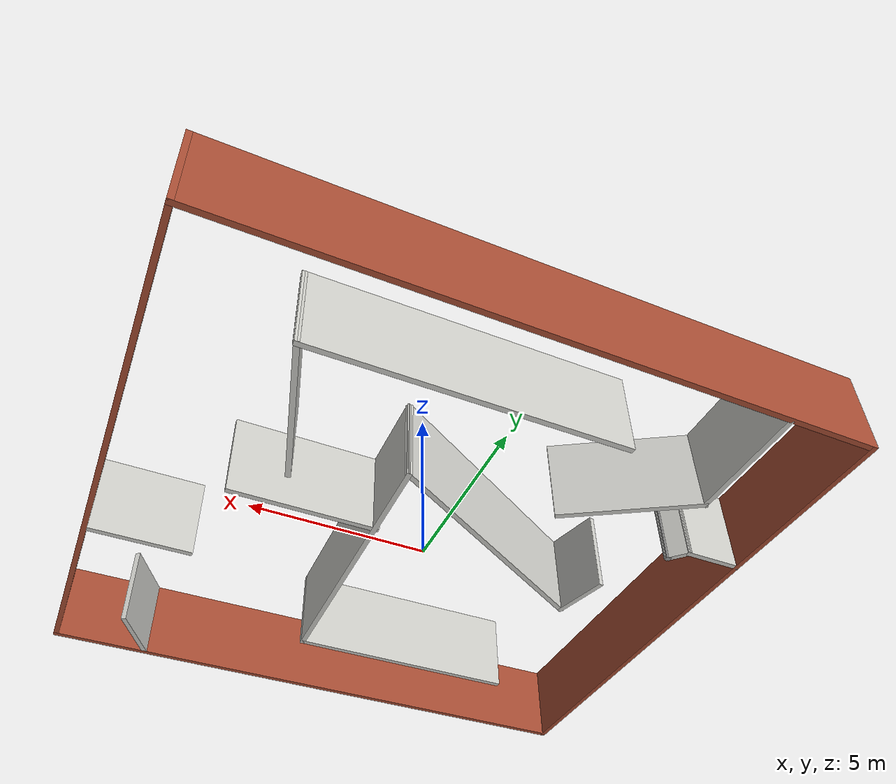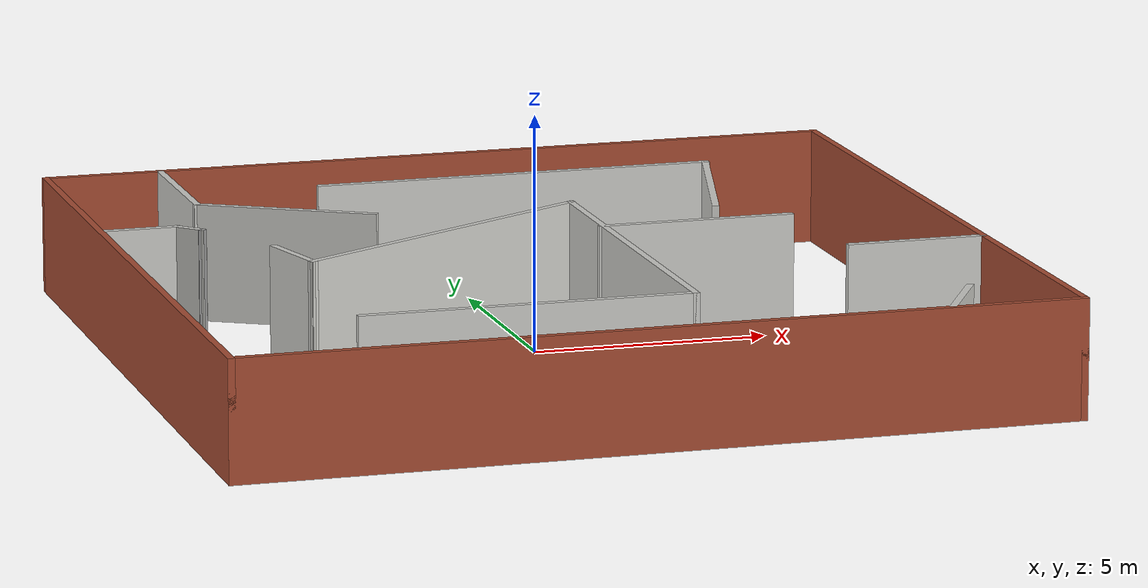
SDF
<?xml version='1.0'?>
<sdf version='1.7'>
  <model name='maze'>
    <pose>0.170889 -0.139064 0 0 -0 0</pose>
    <link name='Wall_22'>
      <collision name='Wall_22_Collision'>
        <geometry>
          <box>
            <size>16.75 0.15 2.5</size>
          </box>
        </geometry>
        <pose>0 0 1.25 0 -0 0</pose>
      </collision>
      <visual name='Wall_22_Visual'>
        <pose>0 0 1.25 0 -0 0</pose>
        <geometry>
          <box>
            <size>16.75 0.15 2.5</size>
          </box>
        </geometry>
        <material>
          <script>
            <uri>file://media/materials/scripts/gazebo.material</uri>
            <name>Gazebo/Bricks</name>
          </script>
          <ambient>1 1 1 1</ambient>
        </material>
        <meta>
          <layer>0</layer>
        </meta>
      </visual>
      <pose>-8.675 0 0 0 -0 -1.5708</pose>
    </link>
    <link name='Wall_23'>
      <collision name='Wall_23_Collision'>
        <geometry>
          <box>
            <size>17.5 0.15 2.5</size>
          </box>
        </geometry>
        <pose>0 0 1.25 0 -0 0</pose>
      </collision>
      <visual name='Wall_23_Visual'>
        <pose>0 0 1.25 0 -0 0</pose>
        <geometry>
          <box>
            <size>17.5 0.15 2.5</size>
          </box>
        </geometry>
        <material>
          <script>
            <uri>file://media/materials/scripts/gazebo.material</uri>
            <name>Gazebo/Bricks</name>
          </script>
          <ambient>1 1 1 1</ambient>
        </material>
        <meta>
          <layer>0</layer>
        </meta>
      </visual>
      <pose>-0 -8.3 0 0 -0 0</pose>
    </link>
    <link name='Wall_24'>
      <collision name='Wall_24_Collision'>
        <geometry>
          <box>
            <size>16.75 0.15 2.5</size>
          </box>
        </geometry>
        <pose>0 0 1.25 0 -0 0</pose>
      </collision>
      <visual name='Wall_24_Visual'>
        <pose>0 0 1.25 0 -0 0</pose>
        <geometry>
          <box>
            <size>16.75 0.15 2.5</size>
          </box>
        </geometry>
        <material>
          <script>
            <uri>file://media/materials/scripts/gazebo.material</uri>
            <name>Gazebo/Bricks</name>
          </script>
          <ambient>1 1 1 1</ambient>
        </material>
        <meta>
          <layer>0</layer>
        </meta>
      </visual>
      <pose>8.675 0 0 0 -0 1.5708</pose>
    </link>
    <link name='Wall_25'>
      <collision name='Wall_25_Collision'>
        <geometry>
          <box>
            <size>17.5 0.15 2.5</size>
          </box>
        </geometry>
        <pose>0 0 1.25 0 -0 0</pose>
      </collision>
      <visual name='Wall_25_Visual'>
        <pose>0 0 1.25 0 -0 0</pose>
        <geometry>
          <box>
            <size>17.5 0.15 2.5</size>
          </box>
        </geometry>
        <material>
          <script>
            <uri>file://media/materials/scripts/gazebo.material</uri>
            <name>Gazebo/Bricks</name>
          </script>
          <ambient>1 1 1 1</ambient>
        </material>
        <meta>
          <layer>0</layer>
        </meta>
      </visual>
      <pose>-0 8.3 0 0 -0 3.14159</pose>
    </link>
    <link name='Wall_27'>
      <collision name='Wall_27_Collision'>
        <geometry>
          <box>
            <size>3.5 0.15 2.5</size>
          </box>
        </geometry>
        <pose>0 0 1.25 0 -0 0</pose>
      </collision>
      <visual name='Wall_27_Visual'>
        <pose>0 0 1.25 0 -0 0</pose>
        <geometry>
          <box>
            <size>3.5 0.15 2.5</size>
          </box>
        </geometry>
        <material>
          <script>
            <uri>file://media/materials/scripts/gazebo.material</uri>
            <name>Gazebo/CeilingTiled</name>
          </script>
          <ambient>1 1 1 1</ambient>
        </material>
        <meta>
          <layer>0</layer>
        </meta>
      </visual>
      <pose>-6.16926 6.57143 0 0 -0 -1.5708</pose>
    </link>
    <link name='Wall_32'>
      <collision name='Wall_32_Collision'>
        <geometry>
          <box>
            <size>7.75 0.15 2.5</size>
          </box>
        </geometry>
        <pose>0 0 1.25 0 -0 0</pose>
      </collision>
      <visual name='Wall_32_Visual'>
        <pose>0 0 1.25 0 -0 0</pose>
        <geometry>
          <box>
            <size>7.75 0.15 2.5</size>
          </box>
        </geometry>
        <material>
          <script>
            <uri>file://media/materials/scripts/gazebo.material</uri>
            <name>Gazebo/CeilingTiled</name>
          </script>
          <ambient>1 1 1 1</ambient>
        </material>
        <meta>
          <layer>0</layer>
        </meta>
      </visual>
      <pose>-1.85377 1.00427 0 0 -0 -2.61799</pose>
    </link>
    <link name='Wall_39'>
      <collision name='Wall_39_Collision'>
        <geometry>
          <box>
            <size>8.75 0.15 2.5</size>
          </box>
        </geometry>
        <pose>0 0 1.25 0 -0 0</pose>
      </collision>
      <visual name='Wall_39_Visual'>
        <pose>0 0 1.25 0 -0 0</pose>
        <geometry>
          <box>
            <size>8.75 0.15 2.5</size>
          </box>
        </geometry>
        <material>
          <script>
            <uri>file://media/materials/scripts/gazebo.material</uri>
            <name>Gazebo/CeilingTiled</name>
          </script>
          <ambient>1 1 1 1</ambient>
        </material>
        <meta>
          <layer>0</layer>
        </meta>
      </visual>
      <pose>1.08014 5.91388 0 0 -0 0</pose>
    </link>
    <link name='Wall_41'>
      <collision name='Wall_41_Collision'>
        <geometry>
          <box>
            <size>4 0.15 2.5</size>
          </box>
        </geometry>
        <pose>0 0 1.25 0 -0 0</pose>
      </collision>
      <visual name='Wall_41_Visual'>
        <pose>0 0 1.25 0 -0 0</pose>
        <geometry>
          <box>
            <size>4 0.15 2.5</size>
          </box>
        </geometry>
        <material>
          <script>
            <uri>file://media/materials/scripts/gazebo.material</uri>
            <name>Gazebo/CeilingTiled</name>
          </script>
          <ambient>1 1 1 1</ambient>
        </material>
        <meta>
          <layer>0</layer>
        </meta>
      </visual>
      <pose>-4.50216 3.93393 0 0 -0 -0.523599</pose>
    </link>
    <link name='Wall_44'>
      <collision name='Wall_44_Collision'>
        <geometry>
          <box>
            <size>8.75 0.15 2.5</size>
          </box>
        </geometry>
        <pose>0 0 1.25 0 -0 0</pose>
      </collision>
      <visual name='Wall_44_Visual'>
        <pose>0 0 1.25 0 -0 0</pose>
        <geometry>
          <box>
            <size>8.75 0.15 2.5</size>
          </box>
        </geometry>
        <material>
          <script>
            <uri>file://media/materials/scripts/gazebo.material</uri>
            <name>Gazebo/CeilingTiled</name>
          </script>
          <ambient>1 1 1 1</ambient>
        </material>
        <meta>
          <layer>0</layer>
        </meta>
      </visual>
      <pose>1.43713 -1.39573 0 0 -0 -1.5708</pose>
    </link>
    <link name='Wall_45'>
      <collision name='Wall_45_Collision'>
        <geometry>
          <box>
            <size>7 0.15 2.5</size>
          </box>
        </geometry>
        <pose>0 0 1.25 0 -0 0</pose>
      </collision>
      <visual name='Wall_45_Visual'>
        <pose>0 0 1.25 0 -0 0</pose>
        <geometry>
          <box>
            <size>7 0.15 2.5</size>
          </box>
        </geometry>
        <material>
          <script>
            <uri>file://media/materials/scripts/gazebo.material</uri>
            <name>Gazebo/CeilingTiled</name>
          </script>
          <ambient>1 1 1 1</ambient>
        </material>
        <meta>
          <layer>0</layer>
        </meta>
      </visual>
      <pose>-1.98787 -5.69573 0 0 -0 3.14159</pose>
    </link>
    <link name='Wall_47'>
      <collision name='Wall_47_Collision'>
        <geometry>
          <box>
            <size>1.75 0.15 2.5</size>
          </box>
        </geometry>
        <pose>0 0 1.25 0 -0 0</pose>
      </collision>
      <visual name='Wall_47_Visual'>
        <pose>0 0 1.25 0 -0 0</pose>
        <geometry>
          <box>
            <size>1.75 0.15 2.5</size>
          </box>
        </geometry>
        <material>
          <script>
            <uri>file://media/materials/scripts/gazebo.material</uri>
            <name>Gazebo/CeilingTiled</name>
          </script>
          <ambient>1 1 1 1</ambient>
        </material>
        <meta>
          <layer>0</layer>
        </meta>
      </visual>
      <pose>-5.35172 -0.122989 0 0 -0 1.8326</pose>
    </link>
    <link name='Wall_49'>
      <collision name='Wall_49_Collision'>
        <geometry>
          <box>
            <size>1.75 0.15 2.5</size>
          </box>
        </geometry>
        <pose>0 0 1.25 0 -0 0</pose>
      </collision>
      <visual name='Wall_49_Visual'>
        <pose>0 0 1.25 0 -0 0</pose>
        <geometry>
          <box>
            <size>1.75 0.15 2.5</size>
          </box>
        </geometry>
        <material>
          <script>
            <uri>file://media/materials/scripts/gazebo.material</uri>
            <name>Gazebo/CeilingTiled</name>
          </script>
          <ambient>1 1 1 1</ambient>
        </material>
        <meta>
          <layer>0</layer>
        </meta>
      </visual>
      <pose>-7.86107 2.96653 0 0 -0 0</pose>
    </link>
    <link name='Wall_50'>
      <collision name='Wall_50_Collision'>
        <geometry>
          <box>
            <size>0.75 0.15 2.5</size>
          </box>
        </geometry>
        <pose>0 0 1.25 0 -0 0</pose>
      </collision>
      <visual name='Wall_50_Visual'>
        <pose>0 0 1.25 0 -0 0</pose>
        <geometry>
          <box>
            <size>0.75 0.15 2.5</size>
          </box>
        </geometry>
        <material>
          <script>
            <uri>file://media/materials/scripts/gazebo.material</uri>
            <name>Gazebo/CeilingTiled</name>
          </script>
          <ambient>1 1 1 1</ambient>
        </material>
        <meta>
          <layer>0</layer>
        </meta>
      </visual>
      <pose>-6.84893 2.75439 0 0 -0 -0.785398</pose>
    </link>
    <link name='Wall_51'>
      <collision name='Wall_51_Collision'>
        <geometry>
          <box>
            <size>0.16 0.15 2.5</size>
          </box>
        </geometry>
        <pose>0 0 1.25 0 -0 0</pose>
      </collision>
      <visual name='Wall_51_Visual'>
        <pose>0 0 1.25 0 -0 0</pose>
        <geometry>
          <box>
            <size>0.16 0.15 2.5</size>
          </box>
        </geometry>
        <material>
          <script>
            <uri>file://media/materials/scripts/gazebo.material</uri>
            <name>Gazebo/Grey</name>
          </script>
          <ambient>0 0 0 1</ambient>
        </material>
        <meta>
          <layer>0</layer>
        </meta>
      </visual>
      <pose>-6.6318 2.54226 0 0 -0 0</pose>
    </link>
    <link name='Wall_54'>
      <collision name='Wall_54_Collision'>
        <geometry>
          <box>
            <size>3 0.15 2.5</size>
          </box>
        </geometry>
        <pose>0 0 1.25 0 -0 0</pose>
      </collision>
      <visual name='Wall_54_Visual'>
        <pose>0 0 1.25 0 -0 0</pose>
        <geometry>
          <box>
            <size>3 0.15 2.5</size>
          </box>
        </geometry>
        <material>
          <script>
            <uri>file://media/materials/scripts/gazebo.material</uri>
            <name>Gazebo/CeilingTiled</name>
          </script>
          <ambient>1 1 1 1</ambient>
        </material>
        <meta>
          <layer>0</layer>
        </meta>
      </visual>
      <pose>7.20955 -2.53435 0 0 -0 3.14159</pose>
    </link>
    <link name='Wall_56'>
      <collision name='Wall_56_Collision'>
        <geometry>
          <box>
            <size>4.25 0.15 2.5</size>
          </box>
        </geometry>
        <pose>0 0 1.25 0 -0 0</pose>
      </collision>
      <visual name='Wall_56_Visual'>
        <pose>0 0 1.25 0 -0 0</pose>
        <geometry>
          <box>
            <size>4.25 0.15 2.5</size>
          </box>
        </geometry>
        <material>
          <script>
            <uri>file://media/materials/scripts/gazebo.material</uri>
            <name>Gazebo/CeilingTiled</name>
          </script>
          <ambient>1 1 1 1</ambient>
        </material>
        <meta>
          <layer>0</layer>
        </meta>
      </visual>
      <pose>3.44257 0.517046 0 0 -0 0</pose>
    </link>
    <link name='Wall_58'>
      <collision name='Wall_58_Collision'>
        <geometry>
          <box>
            <size>4.5 0.15 2.5</size>
          </box>
        </geometry>
        <pose>0 0 1.25 0 -0 0</pose>
      </collision>
      <visual name='Wall_58_Visual'>
        <pose>0 0 1.25 0 -0 0</pose>
        <geometry>
          <box>
            <size>4.5 0.15 2.5</size>
          </box>
        </geometry>
        <material>
          <script>
            <uri>file://media/materials/scripts/gazebo.material</uri>
            <name>Gazebo/CeilingTiled</name>
          </script>
          <ambient>1 1 1 1</ambient>
        </material>
        <meta>
          <layer>0</layer>
        </meta>
      </visual>
      <pose>4.81721 3.81299 0 0 -0 -1.8326</pose>
    </link>
    <link name='Wall_65'>
      <collision name='Wall_65_Collision'>
        <geometry>
          <box>
            <size>2 0.15 2.5</size>
          </box>
        </geometry>
        <pose>0 0 1.25 0 -0 0</pose>
      </collision>
      <visual name='Wall_65_Visual'>
        <pose>0 0 1.25 0 -0 0</pose>
        <geometry>
          <box>
            <size>2 0.15 2.5</size>
          </box>
        </geometry>
        <material>
          <script>
            <uri>file://media/materials/scripts/gazebo.material</uri>
            <name>Gazebo/CeilingTiled</name>
          </script>
          <ambient>1 1 1 1</ambient>
        </material>
        <meta>
          <layer>0</layer>
        </meta>
      </visual>
      <pose>6.39408 -7.4518 0 0 -0 1.0472</pose>
    </link>
    <static>1</static>
  </model>
</sdf>
